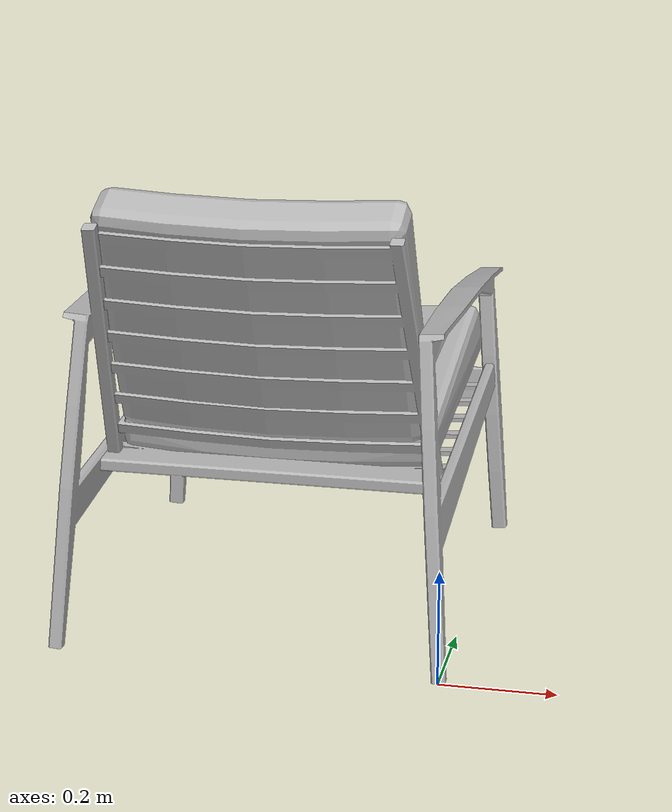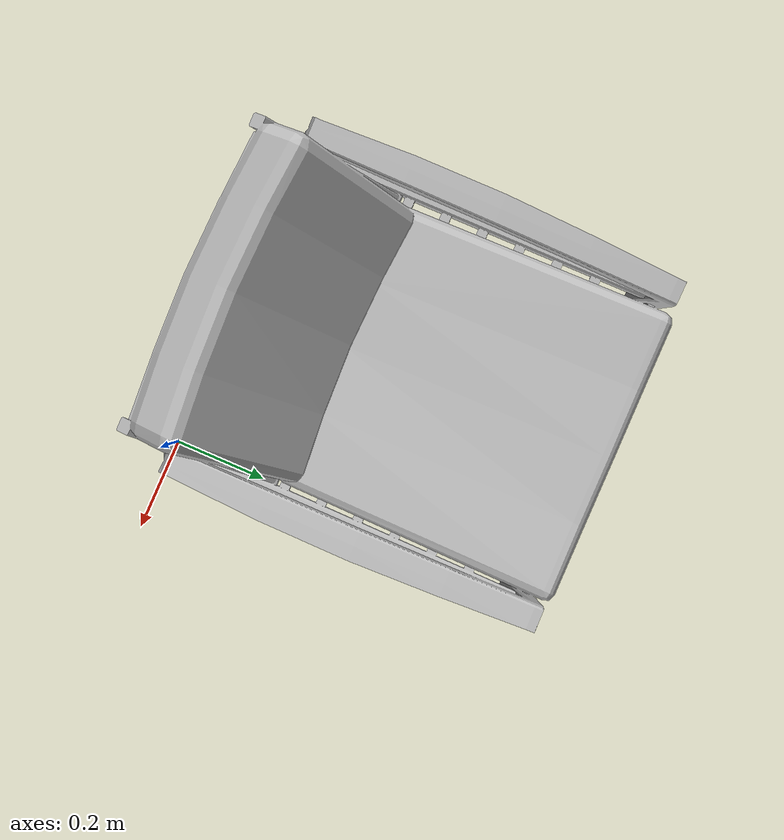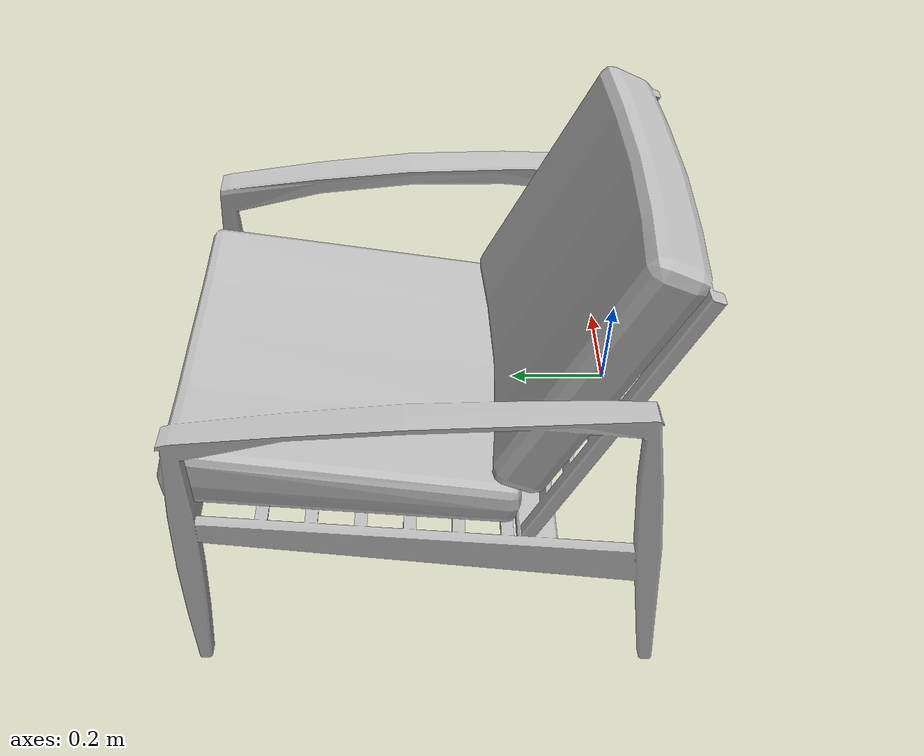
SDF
<?xml version="1.0" ?>
<sdf version="1.5">
  <model name="Sofa 2">
    <static>true</static>
    <link name="link">
      <collision name="collision">
        <geometry>
            <mesh>
                <uri>model://sofa2/meshes/sofa2.stl</uri>
                <scale>1 1 1</scale>
            </mesh>
        </geometry>
      </collision>
      <visual name="visual">
        <geometry>
          <mesh>
            <uri>model://sofa2/meshes/sofa2.stl</uri>
            <scale>1 1 1</scale>
          </mesh>
        </geometry>
      </visual>
    </link>
    <gazebo reference="link">
      <material>Gazebo/White</material>
    </gazebo>
  </model>
</sdf>
